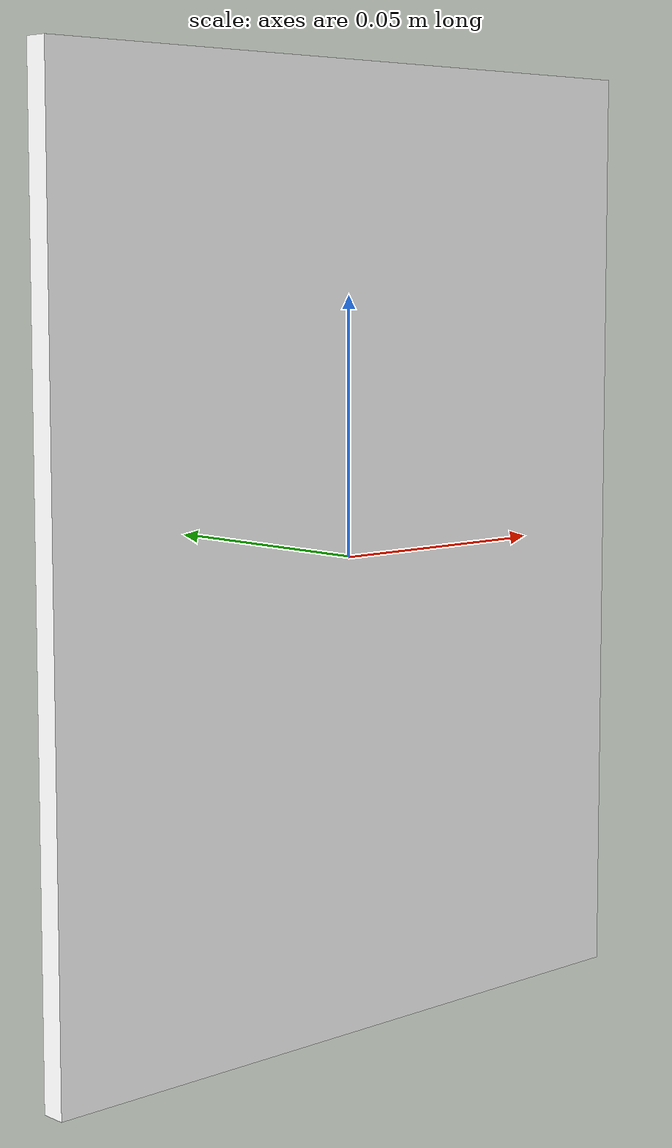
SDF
<?xml version='1.0'?>
<sdf version='1.7'>
  <model name='target'>
    <link name='target'>
        <collision name='target_Collision'>
          <geometry>
            <box>
              <size>0.1 0.005 0.1</size>
            </box>
          </geometry>
          <pose>0 0 0 0 -0 0</pose>
          <max_contacts>10</max_contacts>
          <surface>
            <contact>
              <ode/>
            </contact>
            <bounce/>
            <friction>
              <torsional>
                <ode/>
              </torsional>
              <ode/>
            </friction>
          </surface>
        </collision>
        <visual name='target_Visual'>
          <pose>0 0 0 0 -0 0</pose>
          <geometry>
            <box>
              <size>0.144 0.005 0.188</size>
            </box>
          </geometry>
          <material>
            <script>
              <uri>file://media/materials/scripts/target.material</uri>
              <name>Gazebo/target</name>
            </script>
            <ambient>1 1 1 1</ambient>
          </material>
          <meta>
            <layer>0</layer>
          </meta>
        </visual>
        <pose>0 0 0 0 -0 0</pose>
        <self_collide>0</self_collide>
        <enable_wind>0</enable_wind>
        <kinematic>0</kinematic>
      </link>
    <static>0</static>
    <allow_auto_disable>1</allow_auto_disable>
  </model>
</sdf>
